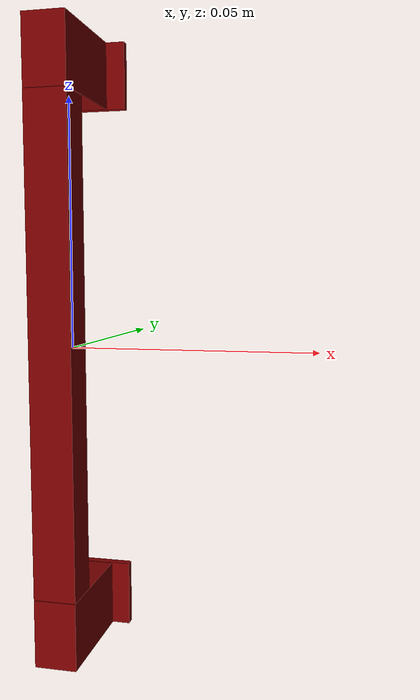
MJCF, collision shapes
<?xml version='1.0' encoding='UTF-8'?>
<mujoco model="model">
  <option timestep="0.002" gravity="0.0 0.0 -9.81"/>
  <compiler angle="radian"/>
  <asset>
    <mesh file="visuals/CabinetHandle040.obj" name="CabinetHandle040_vis"/>
    <texture file="visuals/T_BC001.png" name="tex" type="2d"/>
    <material name="mat" rgba="1 1 1 1.0" texture="tex" shininess="0.4472135901451111" specular="0.3103448502657381"/>
  </asset>
  <default>
    <default class="visual">
      <geom conaffinity="0" contype="0" group="1" type="mesh"/>
    </default>
    <default class="collision">
      <geom group="0" rgba="0.5 0 0 0.5" density="1.0" solref="0.004 1" solimp="0.998 0.998 0.001"/>
    </default>
    <default class="spawn">
      <geom group="0" rgba="1 1 1 0.5" contype="0" conaffinity="0"/>
      <site group="0" rgba="1 1 1 0.5"/>
    </default>
    <default class="region">
      <geom group="1" conaffinity="0" contype="0" rgba="0 1 0 0" mass="0"/>
    </default>
  </default>
  <worldbody>
    <body>
      <body name="object">
        <geom mesh="CabinetHandle040_vis" type="mesh" solimp="0.998 0.998 0.001" solref="0.001 1" friction="0.95 0.3 0.1" class="visual" material="mat"/>
        <geom type="box" pos="6.8483154791465495e-06 -0.00812232494354248 0.00010885679512284696" size="0.004304050002247095 0.003875687951222062 0.04903721064329147" quat="1.0 0.0 0.0 0.0" class="collision"/>
        <geom type="box" pos="-4.411049303598702e-10 0.011128867045044899 0.0560198575258255" size="0.008128734305500984 0.0008691463735885918 0.006787479855120182" quat="1.0 0.0 0.0 0.0" class="collision"/>
        <geom type="box" pos="6.8483154791465495e-06 -0.000983240781351924 0.0560198538005352" size="0.00430405093356967 0.011014771647751331 0.00678747845813632" quat="1.0 0.0 0.0 0.0" class="collision"/>
        <geom type="box" pos="6.8483154791465495e-06 -0.0009832412470132113 -0.05594738945364952" size="0.004304051399230957 0.011014771647751331 0.006859943270683289" quat="1.0 0.0 0.0 0.0" class="collision"/>
        <geom type="box" pos="-4.411049303598702e-10 0.011128867045044899 -0.05594738945364952" size="0.008128737099468708 0.0008691465482115746 0.006859943736344576" quat="1.0 0.0 0.0 0.0" class="collision"/>
        <geom class="region" name="reg_main" type="box" pos="0.0 0.0 0.0" size="0.009128738030791284 0.012998014524579049 0.06380733644962311"/>
      </body>
    </body>
  </worldbody>
  <actuator/>
</mujoco>
